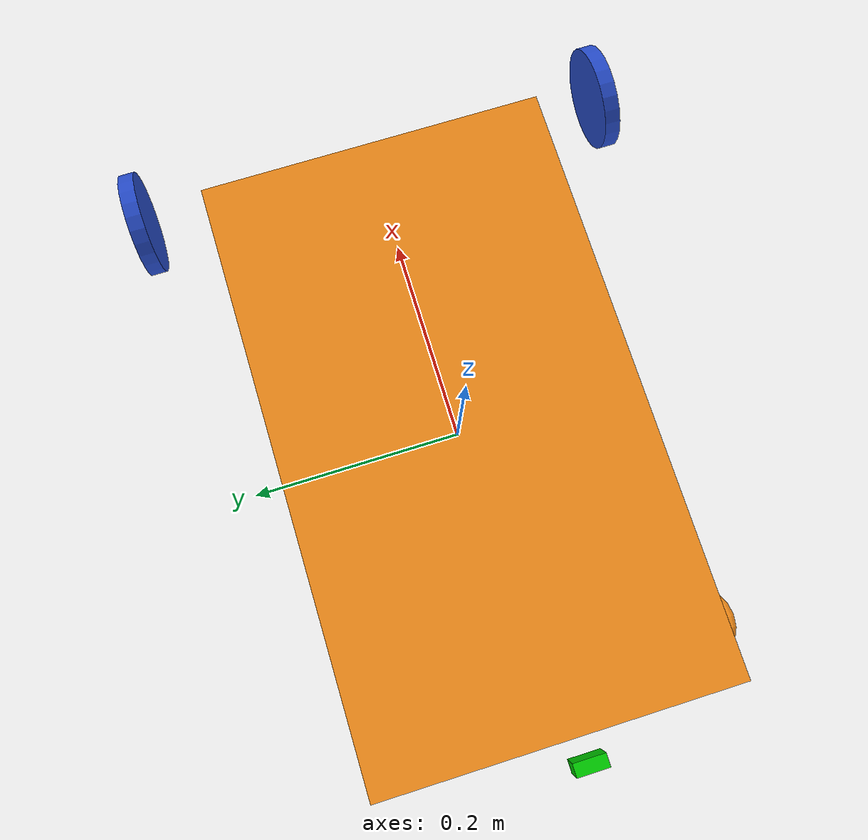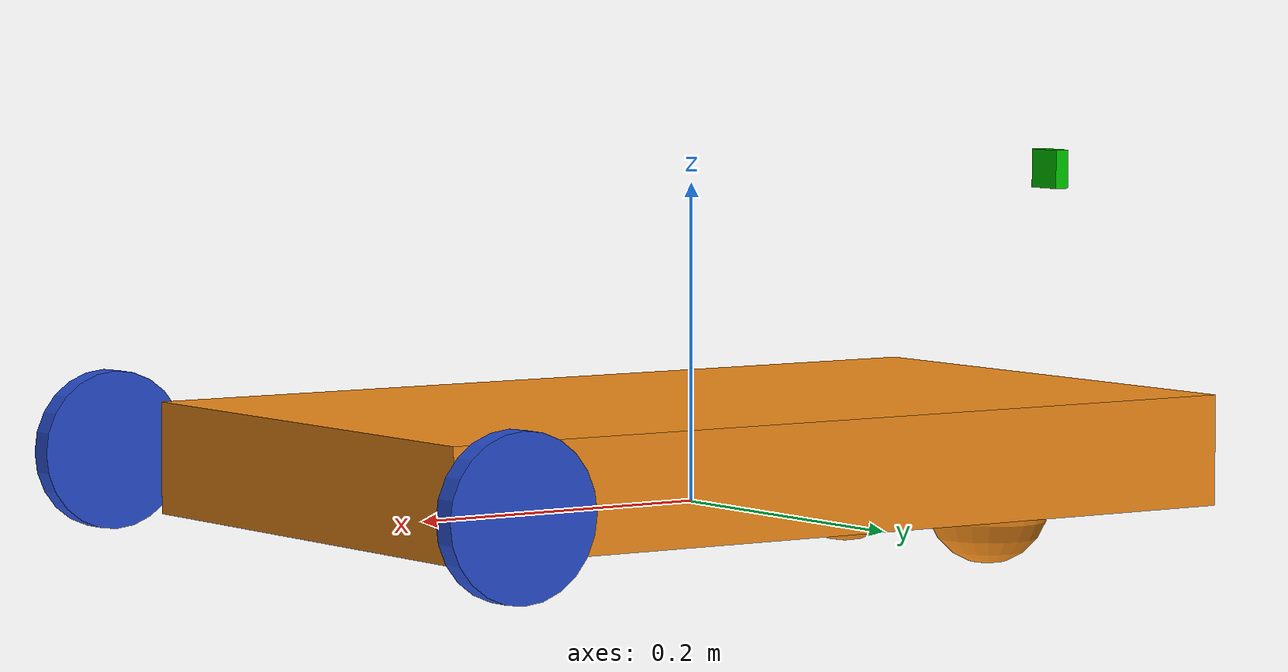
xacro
<?xml version='1.0'?>

<robot name="alligator" xmlns:xacro="http://www.ros.org/wiki/xacro">

  <xacro:include filename="$(find alligator_sim)/urdf/mybot.gazebo" />
  <xacro:include filename="$(find alligator_sim)/urdf/materials.xacro" />
  <xacro:include filename="$(find alligator_sim)/urdf/macros.xacro" />

  <link name='chassis'>
    <pose>0 0 0.1 0 0 0</pose>

    <inertial>
      <mass value="4.0"/>
      <origin xyz="0.0 0 0.03" rpy=" 0 0 0"/>
      <inertia
          ixx="0.5" ixy="0" ixz="0"
          iyy="1.0" iyz="0"
          izz="0.1"
      />
    </inertial>

    <collision name='collision'>
      <geometry>
        <box size=".571 .335 .07"/>
      </geometry>
    </collision>

    <visual name='chassis_visual'>
      <origin xyz="0 0 0.03" rpy=" 0 0 0"/>
      <geometry>
        <box size=".571 .335 .07"/>
      </geometry>
    </visual>

    <collision name='caster_collision'>
      <origin xyz="-0.235 0 -0.035" rpy=" 0 0 0"/>
      <geometry>
        <sphere radius="0.02"/>
      </geometry>
      <surface>
        <friction>
          <ode>
            <mu>0</mu>
            <mu2>0</mu2>
            <slip1>1.0</slip1>
            <slip2>1.0</slip2>
          </ode>
        </friction>
      </surface>
    </collision>
    <visual name='caster_visual'>
      <origin xyz="-0.235 0 -0.015" rpy=" 0 0 0"/>
      <geometry>
        <sphere radius="0.04"/>
      </geometry>
    </visual>

    <collision name='right_caster_collision'>
      <origin xyz="-0.235 -0.155 -0.035" rpy=" 0 0 0"/>
      <geometry>
        <sphere radius="0.02"/>
      </geometry>
      <surface>
        <friction>
          <ode>
            <mu>0</mu>
            <mu2>0</mu2>
            <slip1>1.0</slip1>
            <slip2>1.0</slip2>
          </ode>
        </friction>
      </surface>
    </collision>
    <visual name='right_caster_visual'>
      <origin xyz="-0.235 -0.155 -0.015" rpy=" 0 0 0"/>
      <geometry>
        <sphere radius="0.04"/>
      </geometry>
    </visual>
  </link>

  <link name="left_wheel">
    <!--origin xyz="0.1 0.13 0.1" rpy="0 1.5707 1.5707"/-->
    <collision name="collision">
      <origin xyz="0 0 0" rpy="0 1.5707 1.5707"/>
      <geometry>
        <cylinder radius="0.05" length="0.015"/>
      </geometry>
    </collision>
    <visual name="left_wheel_visual">
      <origin xyz="0 0 0" rpy="0 1.5707 1.5707"/>
      <geometry>
        <cylinder radius="0.05" length="0.015"/>
      </geometry>
    </visual>
    <inertial>
      <origin xyz="0 0 0" rpy="0 1.5707 1.5707"/>
      <mass value="0.5"/>
      <cylinder_inertia m="5" r="0.1" h="0.05"/>
      <inertia
        ixx="1.0" ixy="0.0" ixz="0.0"
        iyy="1.0" iyz="0.0"
        izz="1.0"/>
    </inertial>
  </link>

  <link name="right_wheel">
    <!--origin xyz="0.1 -0.13 0.1" rpy="0 1.5707 1.5707"/-->
    <collision name="collision">
      <origin xyz="0 0 0" rpy="0 1.5707 1.5707"/>
      <geometry>
        <cylinder radius="0.05" length="0.015"/>
      </geometry>
    </collision>
    <visual name="right_wheel_visual">
      <origin xyz="0 0 0" rpy="0 1.5707 1.5707"/>
      <geometry>
        <cylinder radius="0.05" length="0.015"/>
      </geometry>
    </visual>
    <inertial>
      <origin xyz="0 0 0" rpy="0 1.5707 1.5707"/>
      <mass value="0.5"/>
      <cylinder_inertia m="5" r="0.1" h="0.05"/>
      <inertia
        ixx="1.0" ixy="0.0" ixz="0.0"
        iyy="1.0" iyz="0.0"
        izz="1.0"/>
    </inertial>
  </link>

  <joint type="continuous" name="left_wheel_hinge">
    <origin xyz="0.285 0.233 0.03" rpy="0 0 0"/>
    <child link="left_wheel"/>
    <parent link="chassis"/>
    <axis xyz="0 1 0" rpy="0 0 0"/>
    <limit effort="100" velocity="100"/>
    <joint_properties damping="0.0" friction="0.0"/>
  </joint>

  <joint type="continuous" name="right_wheel_hinge">
    <origin xyz="0.285 -0.233 0.03" rpy="0 0 0"/>
    <child link="right_wheel"/>
    <parent link="chassis"/>
    <axis xyz="0 1 0" rpy="0 0 0"/>
    <limit effort="100" velocity="100"/>
    <joint_properties damping="0.0" friction="0.0"/>
  </joint>

 <link name="RPiCamera">
    <collision>
      <origin xyz="0 0 0.0" rpy="0 0 0"/>
      <geometry>
        <box size="0.01 0.025 0.025"/>
      </geometry>
    </collision>

    <visual>
      <origin xyz="0 0 0.0" rpy="0 0 0"/>
      <geometry>
        <box size="0.01 0.025 0.025"/>
      </geometry>
      <material name="green"/>
    </visual>

    <inertial>
      <mass value="0.1" />
      <origin xyz="0 0 0" rpy="0 0 0"/>
      <box_inertia m="0.1" x="0.01" y="0.025" z="0.025" />
      <inertia ixx="1e-6" ixy="0" ixz="0" iyy="1e-6" iyz="0" izz="1e-6" />
    </inertial>
  </link>

  <joint name="camera_joint" type="fixed">
    <axis xyz="0 1 0" />
    <origin xyz="-0.285 0 0.2" rpy="0 0 3.14159"/>
    <parent link="chassis"/>
    <child link="RPiCamera"/>
  </joint>
</robot>

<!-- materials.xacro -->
<robot>

  <material name="black">
    <color rgba="0.0 0.0 0.0 1.0"/>
  </material>

  <material name="blue">
    <color rgba="0.0 0.0 0.8 1.0"/>
  </material>

  <material name="yellow">
    <color rgba="1.0 1.0 0.0 1.0"/>
  </material>

  <material name="green">
    <color rgba="0.0 0.8 0.0 1.0"/>
  </material>

  <material name="grey">
    <color rgba="0.2 0.2 0.2 1.0"/>
  </material>

  <material name="orange">
    <color rgba="${255/255} ${108/255} ${10/255} 1.0"/>
  </material>

  <material name="brown">
    <color rgba="${222/255} ${207/255} ${195/255} 1.0"/>
  </material>

  <material name="red">
    <color rgba="0.8 0.0 0.0 1.0"/>
  </material>

  <material name="white">
    <color rgba="1.0 1.0 1.0 1.0"/>
  </material>

</robot>
